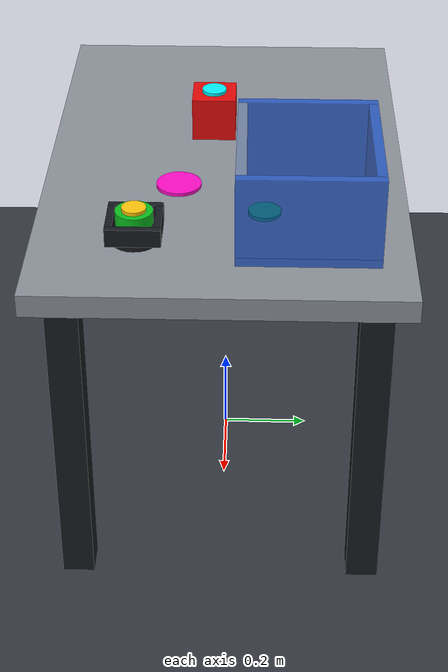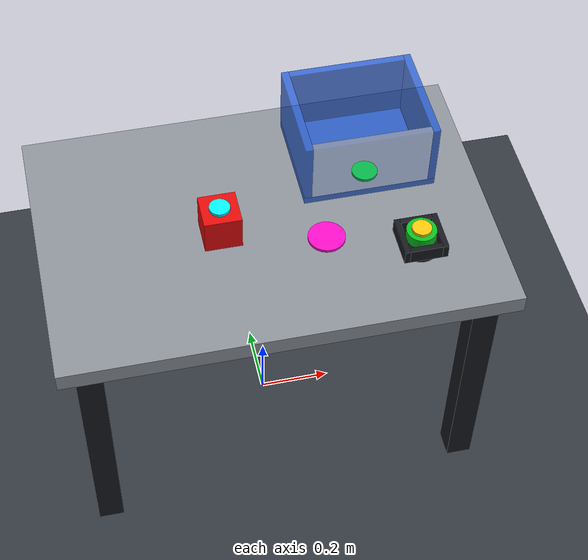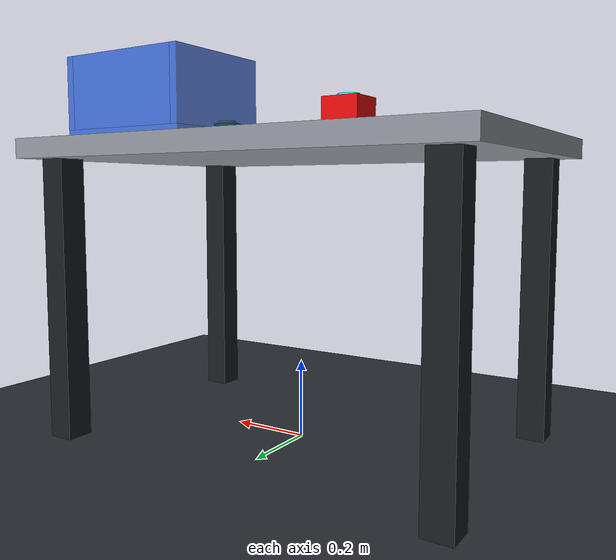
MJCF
<mujoco model="button_cube_box_rgbd_workcell">
  <compiler angle="degree" autolimits="true"/>
  <option timestep="0.001" gravity="0 0 -9.81" integrator="implicitfast" solver="Newton"/>
  <size nconmax="200" njmax="500"/>
  <statistic center="0 0 0.65" extent="1.6"/>
  <visual>
    <global offwidth="640" offheight="480"/>
    <quality shadowsize="2048"/>
    <map znear="0.01" zfar="10"/>
    <headlight ambient="0.28 0.28 0.3" diffuse="0.7 0.7 0.68" specular="0.15 0.15 0.15"/>
  </visual>

  <asset>
    <texture name="ground_texture" type="2d" builtin="checker" rgb1="0.15 0.17 0.2" rgb2="0.25 0.27 0.3" width="512" height="512"/>
    <material name="ground_material" texture="ground_texture" texrepeat="4 4" reflectance="0.08"/>
    <material name="table_material" rgba="0.55 0.57 0.6 1" specular="0.15" roughness="0.7"/>
    <material name="red_material" rgba="0.9 0.04 0.04 1" specular="0.3" roughness="0.35"/>
    <material name="green_material" rgba="0.04 0.75 0.12 1" specular="0.25" roughness="0.4"/>
    <material name="blue_material" rgba="0.08 0.32 0.85 0.72" specular="0.2" roughness="0.45"/>
    <material name="blue_front_material" rgba="0.08 0.32 0.85 0.18" specular="0.1" roughness="0.55"/>
    <material name="dark_material" rgba="0.09 0.1 0.12 1"/>
    <material name="marker_material" rgba="1 0.78 0.05 1" emission="0.25"/>
    <material name="marker_cyan_material" rgba="0.02 0.95 1 1" emission="0.25"/>
    <material name="marker_green_material" rgba="0.05 0.85 0.25 1" emission="0.25"/>
    <material name="marker_magenta_material" rgba="1 0.05 0.78 1" emission="0.25"/>
  </asset>

  <default>
    <geom friction="0.8 0.01 0.001" condim="3" solref="0.002 1" solimp="0.98 0.999 0.0005"/>
    <site type="cylinder" material="marker_material" size="0.03 0.004" group="2"/>
  </default>

  <worldbody>
    <light name="key_light" pos="-1.2 -1.0 2.8" dir="0.35 0.35 -1" directional="true" castshadow="true"/>
    <light name="fill_light" pos="1.2 -0.2 1.8" dir="-0.7 0.15 -1" directional="true" diffuse="0.35 0.38 0.45" specular="0.05 0.05 0.05"/>
    <camera name="overhead_rgbd" pos="1.2 -1.2 1.4" quat="0.7612142645 0.5235515583 0.2168621560 0.3153052722" fovy="50"/>

    <geom name="ground_geom" type="plane" size="2 2 0.1" material="ground_material"/>

    <body name="table" pos="0 0 0.75">
      <geom name="table_geom" type="box" size="0.6 0.4 0.025" material="table_material"/>
      <geom name="table_leg_fl" type="box" pos="-0.52 -0.32 -0.375" size="0.035 0.035 0.375" material="dark_material"/>
      <geom name="table_leg_fr" type="box" pos="0.52 -0.32 -0.375" size="0.035 0.035 0.375" material="dark_material"/>
      <geom name="table_leg_bl" type="box" pos="-0.52 0.32 -0.375" size="0.035 0.035 0.375" material="dark_material"/>
      <geom name="table_leg_br" type="box" pos="0.52 0.32 -0.375" size="0.035 0.035 0.375" material="dark_material"/>
      <site name="inspect_rgbd_marker" pos="0.15 -0.10 0.029" size="0.05 0.004" material="marker_magenta_material"/>
    </body>

    <body name="button_base" pos="0.38 -0.18 0.775">
      <geom name="button_base_geom" type="cylinder" pos="0 0 0.008" size="0.052 0.008" material="dark_material"/>
      <geom name="button_bezel_left" type="box" pos="-0.0505 0 0.036" size="0.0075 0.058 0.02" material="dark_material"/>
      <geom name="button_bezel_right" type="box" pos="0.0505 0 0.036" size="0.0075 0.058 0.02" material="dark_material"/>
      <geom name="button_bezel_front" type="box" pos="0 -0.0505 0.036" size="0.043 0.0075 0.02" material="dark_material"/>
      <geom name="button_bezel_back" type="box" pos="0 0.0505 0.036" size="0.043 0.0075 0.02" material="dark_material"/>
      <body name="button_cap" pos="0 0 0.055">
        <joint name="button_slide" type="slide" axis="0 0 1" range="-0.02 0" damping="2"/>
        <geom name="start_button_geom" type="cylinder" size="0.04 0.015" mass="0.05" material="green_material"/>
        <site name="press_start_button_marker" pos="0 0 0.019" size="0.026 0.004"/>
      </body>
    </body>

    <body name="red_cube" pos="-0.12 -0.03 0.825">
      <freejoint name="cube_free"/>
      <geom name="red_cube_geom" type="box" size="0.05 0.05 0.05" mass="0.2" material="red_material"/>
      <site name="grasp_red_cube_marker" pos="0 0 0.054" size="0.028 0.004" material="marker_cyan_material"/>
    </body>

    <body name="target_box" pos="0.3 0.18 0.775">
      <geom name="box_bottom" type="box" pos="0 0 0.01" size="0.18 0.15 0.01" material="blue_material"/>
      <geom name="box_left" type="box" pos="-0.17 0 0.11" size="0.01 0.15 0.09" material="blue_material"/>
      <geom name="box_right" type="box" pos="0.17 0 0.11" size="0.01 0.15 0.09" material="blue_material"/>
      <geom name="box_front" type="box" pos="0 -0.14 0.11" size="0.16 0.01 0.09" material="blue_front_material"/>
      <geom name="box_back" type="box" pos="0 0.14 0.11" size="0.16 0.01 0.09" material="blue_material"/>
      <site name="place_cube_in_box_marker" pos="0 -0.09 0.024" size="0.035 0.004" material="marker_green_material"/>
    </body>
  </worldbody>

  <equality>
    <weld name="cube_grasp" body1="world" body2="red_cube" active="false"
          solref="0.01 1" solimp="0.96 0.99 0.001"/>
  </equality>

  <actuator>
    <position name="button_press" joint="button_slide" kp="400" ctrlrange="-0.02 0"/>
  </actuator>
</mujoco>
